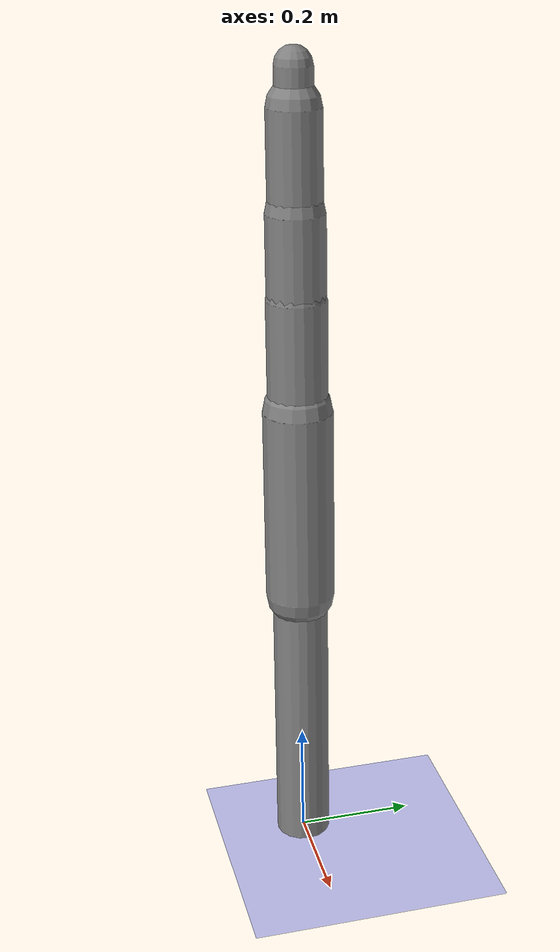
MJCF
<?xml version='1.0' encoding='UTF-8'?>
<mujoco model="robot_model">
  <worldbody>
    <light name="light" pos="0 -3 10" dir="0 0.5 -1" diffuse=".8 .8 .8" specular="0.1 0.1 0.1"/>
    <geom name="floor" type="plane" size="10.0 10.0 0.1" pos="0 0 0" rgba="0.8 0.8 1 1" contype="2" conaffinity="1"/>
    <body name="limb0" pos="0 0 0">
      <geom type="capsule" fromto="0 0 0 0 0 0.5102179851837554" size="0.04807253460988971" density="551.4814570694565" contype="1" conaffinity="2"/>
      <site type="sphere" size="0.01" name="limb0_site0" pos="0 0 0.4874689357729124"/>
      <site type="sphere" size="0.01" name="limb0_site1" pos="0 0 0.24283563268113292"/>
      <site type="sphere" size="0.01" name="limb0_site2" pos="0 0 0.35718868911882995"/>
      <freejoint name="limb0_root"/>
      <body name="limb1" pos="0 0 0.4874689357729124">
        <geom type="capsule" fromto="0 0 0 0 0 0.33989732978298826" size="0.05976116070868703" density="967.9649890736636" contype="1" conaffinity="2"/>
        <site type="sphere" size="0.01" name="limb1_site0" pos="0 0 0.33989732978298826"/>
        <site type="sphere" size="0.01" name="limb1_site1" pos="0 0 0.07793521584847536"/>
        <site type="sphere" size="0.01" name="limb1_site2" pos="0 0 0.29674084815114976"/>
        <body name="limb2" pos="0 0 0.33989732978298826">
          <geom type="capsule" fromto="0 0 0 0 0 0.5" size="0.045329815490319995" density="1017.2531489540214" contype="1" conaffinity="2"/>
          <site type="sphere" size="0.01" name="limb2_site0" pos="0 0 0.3708495592660219"/>
          <body name="limb3" pos="0 0 0.3708495592660219">
            <geom type="capsule" fromto="0 0 0 0 0 0.19166066799868264" size="0.0314707546179414" density="956.2416848734547" contype="1" conaffinity="2"/>
            <joint name="joint_limb2_limb3_0" type="hinge" axis="0 1 0" range="-39.54825129765963 39.54825129765963" damping="5.0"/>
          </body>
          <joint name="joint_limb1_limb2_0" type="hinge" axis="0 1 0" range="-65.28801987102779 65.28801987102779" damping="5.0"/>
        </body>
        <body name="limb4" pos="0 0 0.07793521584847536">
          <geom type="capsule" fromto="0 0 0 0 0 0.4553959547646001" size="0.05112992904407712" density="905.1932138092933" contype="1" conaffinity="2"/>
          <joint name="joint_limb1_limb4_0" type="hinge" axis="0 0 1" range="-74.18856794953084 74.18856794953084" damping="5.0"/>
        </body>
        <body name="limb5" pos="0 0 0.29674084815114976">
          <geom type="capsule" fromto="0 0 0 0 0 0.378171156067034" size="0.04960379875638113" density="1020.0145094172238" contype="1" conaffinity="2"/>
          <joint name="joint_limb1_limb5_0" type="hinge" axis="1 0 0" range="-38.680136556965635 38.680136556965635" damping="5.0"/>
        </body>
        <joint name="joint_limb0_limb1_0" type="hinge" axis="0 1 0" range="-89.12714794406047 89.12714794406047" damping="5.0"/>
      </body>
      <body name="limb6" pos="0 0 0.24283563268113292">
        <geom type="capsule" fromto="0 0 0 0 0 0.4079927779903183" size="0.045481632726800135" density="709.8624680358912" contype="1" conaffinity="2"/>
        <joint name="joint_limb0_limb6_0" type="hinge" axis="0 0 1" range="-45.82744000775369 45.82744000775369" damping="5.0"/>
      </body>
      <body name="limb7" pos="0 0 0.35718868911882995">
        <geom type="capsule" fromto="0 0 0 0 0 0.46896310255948354" size="0.04680002359876636" density="1067.4327630615876" contype="1" conaffinity="2"/>
        <joint name="joint_limb0_limb7_0" type="hinge" axis="0 0 1" range="-92.27664448400314 92.27664448400314" damping="5.0"/>
      </body>
    </body>
  </worldbody>
  <actuator>
    <position name="position_actuator_joint_limb0_limb1_0" joint="joint_limb0_limb1_0" gear="1.8694611590103172" inheritrange="1" forcerange="-22.784063949228845 22.784063949228845" forcelimited="true" kp="100.0"/>
    <position name="position_actuator_joint_limb1_limb2_0" joint="joint_limb1_limb2_0" gear="2.0" inheritrange="1" forcerange="-18.401183504925072 18.401183504925072" forcelimited="true" kp="100.0"/>
    <position name="position_actuator_joint_limb2_limb3_0" joint="joint_limb2_limb3_0" gear="1.9577561249166682" inheritrange="1" forcerange="-3.4754816031092273 3.4754816031092273" forcelimited="true" kp="100.0"/>
    <position name="position_actuator_joint_limb1_limb4_0" joint="joint_limb1_limb4_0" gear="0.707178190140544" inheritrange="1" forcerange="-19.46191769120985 19.46191769120985" forcelimited="true" kp="100.0"/>
    <position name="position_actuator_joint_limb1_limb5_0" joint="joint_limb1_limb5_0" gear="1.5727331217504008" inheritrange="1" forcerange="-17.516274913506823 17.516274913506823" forcelimited="true" kp="100.0"/>
    <position name="position_actuator_joint_limb0_limb6_0" joint="joint_limb0_limb6_0" gear="0.7342032220860385" inheritrange="1" forcerange="-10.80938198786191 10.80938198786191" forcelimited="true" kp="100.0"/>
    <position name="position_actuator_joint_limb0_limb7_0" joint="joint_limb0_limb7_0" gear="1.5469583459264806" inheritrange="1" forcerange="-19.51389525731157 19.51389525731157" forcelimited="true" kp="100.0"/>
  </actuator>
</mujoco>
